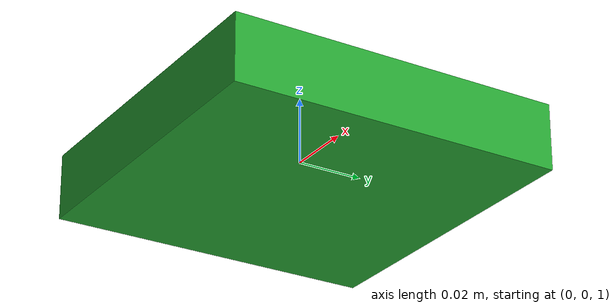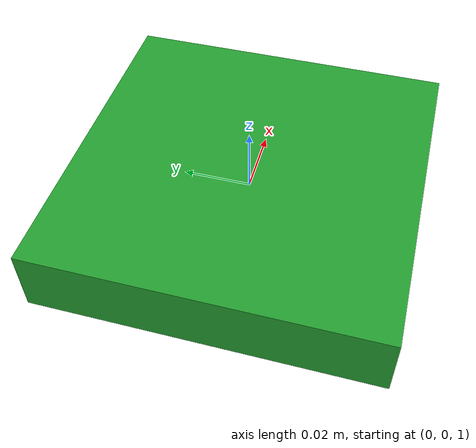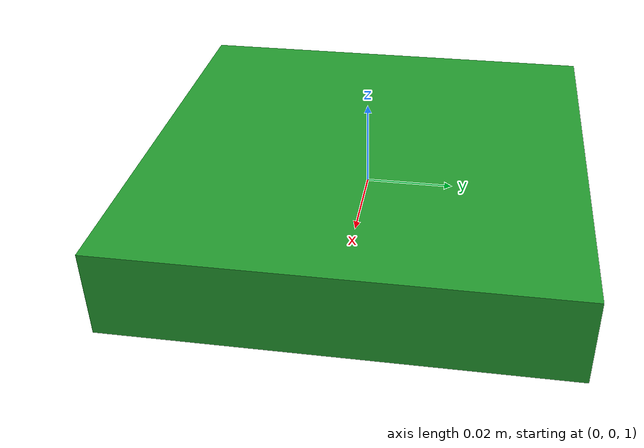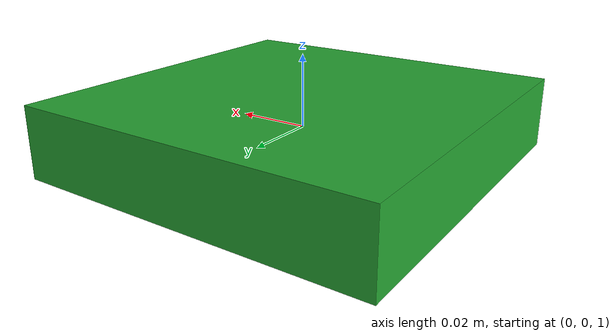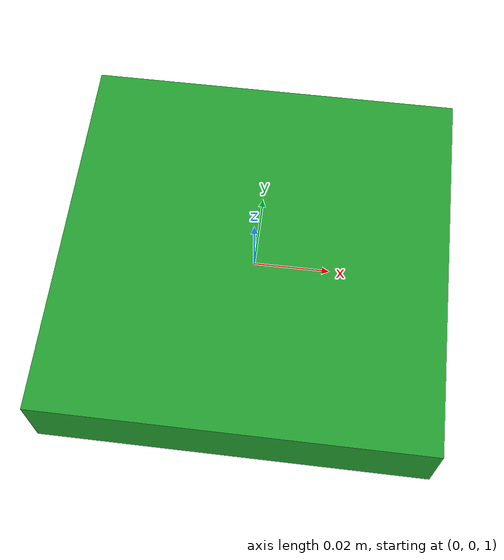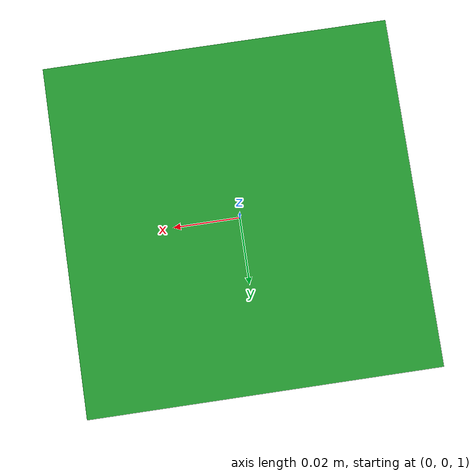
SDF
<?xml version="1.0" ?>
<sdf version="1.4">
      <model name="irlock_beacon">
      <pose>0 0 1 0 0 0</pose>
      <link name="link">
         <inertial>
          <pose>0 0 0 0 0 0</pose>
          <mass>1</mass>
          <inertia>
            <ixx>0.01</ixx>
            <ixy>0</ixy>
            <ixz>0</ixz>
            <iyy>0.01</iyy>
            <iyz>0</iyz>
            <izz>0.01</izz>
          </inertia>
        </inertial>
        <collision name="collision">
          <geometry>
            <box>
              <size>0.1 0.1 0.01</size>
            </box>
          </geometry>
          <surface>
            <friction>
              <ode>
                <mu> 10000000</mu>
                <mu2>10000000</mu2>
                <slip1>0</slip1>
                <slip2>0</slip2>
              </ode>
            </friction>
            <contact>
              <ode>
                <kp>1e+12</kp>
                <kd>1</kd>
                <max_vel>10</max_vel>
                <min_depth>0.003</min_depth>
              </ode>
            </contact>
          </surface>
        </collision>
        <visual name="visual">
          <geometry>
            <box>
              <size>0.1 0.1 0.02</size>
            </box>
          </geometry>
          <material>
            <script>
              <name>Gazebo/Green</name>
            </script>
          </material>
        </visual>
      </link>
    </model>
</sdf>
<!-- vim: set et fenc=utf-8 ff=unix sts=0 sw=4 ts=4 : -->
